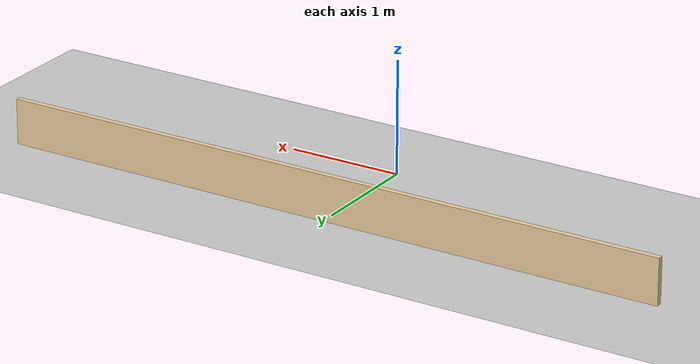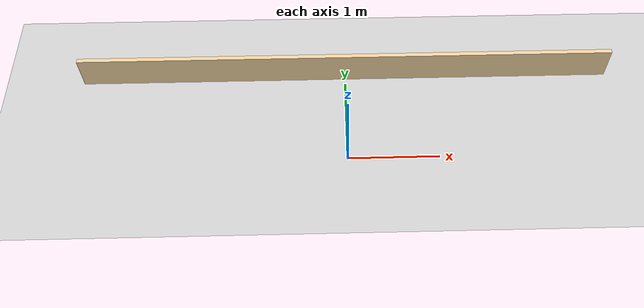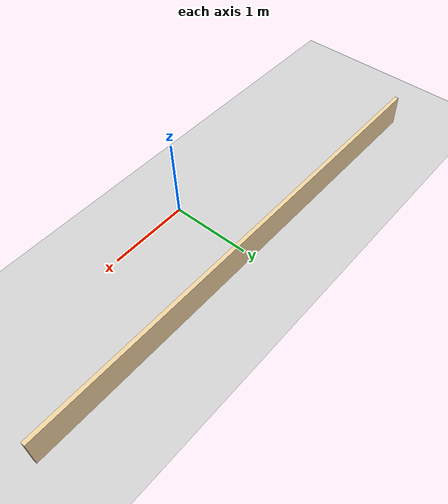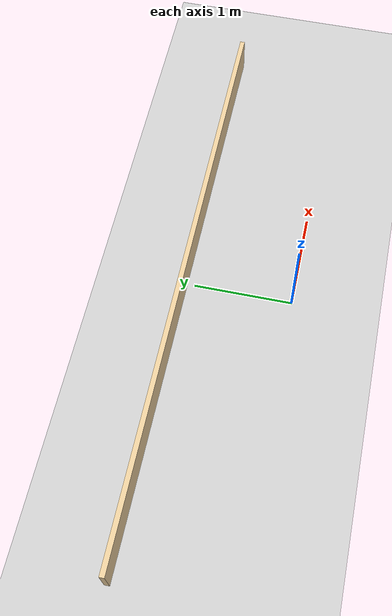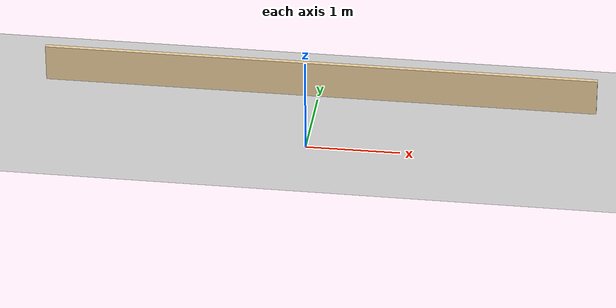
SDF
<?xml version="1.0" ?>
<sdf version="1.4">
  <world name="default">
    <scene>
      <ambient>0.5 0.5 0.5 1.0</ambient>
      <shadows>0</shadows>
    </scene>
    <include>
      <uri>model://ground_plane</uri>
    </include>
    <include>
      <uri>model://sun</uri>
    </include>
    <model name='big_wall'>
      <pose frame=''>0 1.1 0.2 0 0 0</pose>
      <link name='Wall_0'>
        <collision name='Wall_0_Collision'>
          <geometry>
            <box>
              <size>6 0.05 0.4</size>
            </box>
          </geometry>
        </collision>
        <visual name='Wall_0_Visual'>
          <geometry>
            <box>
              <size>6 0.05 0.4</size>
            </box>
          </geometry>
          <material>
            <script>
              <uri>file://media/materials/scripts/gazebo.material</uri>
              <name>Gazebo/Grey</name>
            </script>
            <ambient>0.921569 0.807843 0.615686 1</ambient>
          </material>
          <meta>
            <layer>0</layer>
          </meta>
        </visual>
      </link>
      <static>1</static>
    </model>

  </world>
</sdf>
